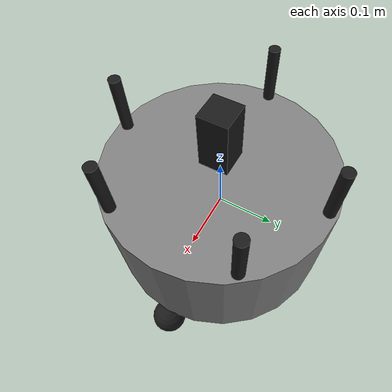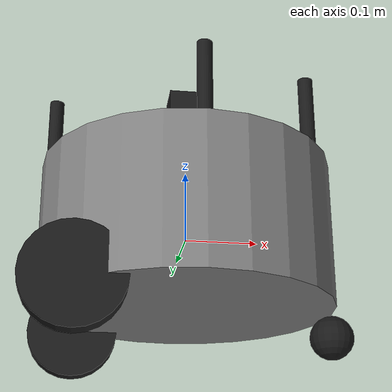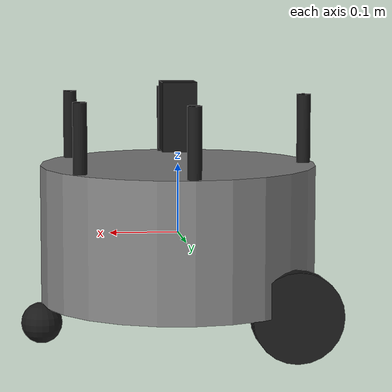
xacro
<?xml version="1.0"?>
<robot name="agv" xmlns:xacro="http://ros.org/wiki/xacro">

  <!-- =====================
       パラメータ
       ===================== -->
  <xacro:property name="body_radius"    value="0.2"/>
  <xacro:property name="body_height"    value="0.2"/>
  <xacro:property name="mass"           value="10.0"/>

  <xacro:property name="wheel_radius"      value="0.065"/>
  <xacro:property name="wheel_width"       value="0.03"/>
  <xacro:property name="wheel_separation"  value="0.3"/>
  <xacro:property name="use_gazebo" value="false"/>
  <!-- =====================
       マテリアル
       ===================== -->
  <material name="gray">
    <color rgba="0.5 0.5 0.5 1.0"/>
  </material>
  <material name="black">
    <color rgba="0.1 0.1 0.1 1.0"/>
  </material>

  <!-- =====================
       本体
       ===================== -->
  <link name="base_link">
    <visual>
      <geometry>
        <cylinder radius="${body_radius}" length="${body_height}"/>
      </geometry>
      <material name="gray"/>
    </visual>
    <collision>
      <geometry>
        <cylinder radius="${body_radius}" length="${body_height}"/>
      </geometry>
    </collision>
    <inertial>
      <mass value="${mass}"/>
      <origin xyz="0 0 0" rpy="0 0 0"/>
      <inertia ixx="0.1" ixy="0" ixz="0" iyy="0.1" iyz="0" izz="0.1"/>
    </inertial>
  </link>

<xacro:if value="${use_gazebo}">
  <gazebo reference="base_link">
    <material>Gazebo/Blue</material>
  </gazebo>
</xacro:if>

  <!-- =====================
       支柱リンク（共通）
       ===================== -->
  <xacro:macro name="pillar_link_macro" params="name">
    <link name="${name}">
      <visual>
        <geometry>
          <cylinder radius="0.01" length="0.2"/>
        </geometry>
        <origin xyz="0 0 0" rpy="0 0 0"/>
        <material name="black"/>
      </visual>
      <collision>
        <geometry>
          <cylinder radius="0.01" length="0.2"/>
        </geometry>
        <origin xyz="0 0 0" rpy="0 0 0"/>
      </collision>
      <inertial>
        <mass value="0.2"/>
        <origin xyz="0 0 0" rpy="0 0 0"/>
        <inertia ixx="0.001" ixy="0" ixz="0" iyy="0.001" iyz="0" izz="0.001"/>
      </inertial>
    </link>
  </xacro:macro>

  <!-- =====================
       支柱配置（5本）
       ===================== -->

  <xacro:pillar_link_macro name="pillar_link_north1"/>
  <joint name="pillar_joint_north" type="fixed">
    <parent link="base_link"/>
    <child link="pillar_link_north1"/>
    <origin xyz="0.1497 0.1087 ${body_height/2}" rpy="0 0 0"/>
  </joint>

  <xacro:pillar_link_macro name="pillar_link_north2"/>
  <joint name="pillar_joint_north2" type="fixed">
    <parent link="base_link"/>
    <child link="pillar_link_north2"/>
    <origin xyz="0.1497 -0.1087 ${body_height/2}" rpy="0 0 0"/>
  </joint>

  <xacro:pillar_link_macro name="pillar_link_south"/>
  <joint name="pillar_joint_south" type="fixed">
    <parent link="base_link"/>
    <child link="pillar_link_south"/>
    <origin xyz="0 -0.185 ${body_height/2}" rpy="0 0 0"/>
  </joint>

  <xacro:pillar_link_macro name="pillar_link_east"/>
  <joint name="pillar_joint_east" type="fixed">
    <parent link="base_link"/>
    <child link="pillar_link_east"/>
    <origin xyz="0 0.185 ${body_height/2}" rpy="0 0 0"/>
  </joint>

  <xacro:pillar_link_macro name="pillar_link_west"/>
  <joint name="pillar_joint_west" type="fixed">
    <parent link="base_link"/>
    <child link="pillar_link_west"/>
    <origin xyz="-0.185 0 ${body_height/2}" rpy="0 0 0"/>
  </joint>

  <!-- =====================
       左右車輪
       ===================== -->
  <link name="left_wheel_link">
    <visual>
      <geometry>
        <cylinder radius="${wheel_radius}" length="${wheel_width}"/>
      </geometry>

      <material name="black"/>
    </visual>
    <collision>
      <geometry>
        <cylinder radius="${wheel_radius}" length="${wheel_width}"/>
      </geometry>
    </collision>
    <inertial>
      <mass value="1.0"/>
      <origin xyz="0 0 0" rpy="0 1.5708 1.5708"/>
      <inertia ixx="0.01" ixy="0" ixz="0" iyy="0.01" iyz="0" izz="0.01"/>
    </inertial>
  </link>

<xacro:if value="${use_gazebo}">
  <gazebo reference="left_wheel_link">
    <material>Gazebo/Black</material>
  </gazebo>
</xacro:if>

  <link name="right_wheel_link">
    <visual>
      <geometry>
        <cylinder radius="${wheel_radius}" length="${wheel_width}"/>
      </geometry>
      <material name="black"/>
    </visual>
    <collision>
      <geometry>
        <cylinder radius="${wheel_radius}" length="${wheel_width}"/>
      </geometry>
    </collision>
    <inertial>
      <mass value="1.0"/>
      <origin xyz="0 0 0" rpy="0 1.5708 1.5708"/>
      <inertia ixx="0.01" ixy="0" ixz="0" iyy="0.01" iyz="0" izz="0.01"/>
    </inertial>
  </link>

<xacro:if value="${use_gazebo}">
  <gazebo reference="right_wheel_link">
    <material>Gazebo/Black</material>
  </gazebo>
</xacro:if>
  <!-- =====================
       ジョイント
       ===================== -->
  <joint name="left_wheel_joint" type="continuous">
    <parent link="base_link"/>
    <child  link="left_wheel_link"/>
    <origin xyz="-0.15 ${wheel_separation/2} ${-body_height/2}" rpy="0 1.5708 1.5708"/>
    <axis  xyz="0 0 1"/>
    <limit effort="1.0" velocity="10.0"/>
  </joint>

  <joint name="right_wheel_joint" type="continuous">
    <parent link="base_link"/>
    <child  link="right_wheel_link"/>
    <origin xyz="-0.15 ${-wheel_separation/2} ${-body_height/2}" rpy="0 1.5708 1.5708"/>
    <axis  xyz="0 0 1"/>
    <limit effort="1.0" velocity="10.0"/>
  </joint>

  <!-- =====================
       レーザー (LiDAR)
       ===================== -->
  <link name="laser_link">
    <visual>
      <geometry>
        <box size="0.05 0.05 0.1"/>
      </geometry>
      <origin xyz="0 0 0.05" rpy="0 0 0"/>
      <material name="black"/>
    </visual>
  </link>

<xacro:if value="${use_gazebo}">
  <gazebo reference="laser_link">
    <material>Gazebo/Black</material>
  </gazebo>
</xacro:if>

  <joint name="laser_joint" type="fixed">
    <parent link="base_link"/>
    <child link="laser_link"/>
    <origin xyz="0 0 ${body_height/2+0.02}" rpy="0 0 3.1415926535"/>
  </joint>

  <!-- =====================
       Gazebo プラグイン
       ===================== -->

<xacro:if value="${use_gazebo}">
 <gazebo>
    <plugin name="gazebo_ros_diff_drive" filename="libgazebo_ros_diff_drive.so">
      <left_joint>left_wheel_joint</left_joint>
      <right_joint>right_wheel_joint</right_joint>
      <wheel_separation>${wheel_separation}</wheel_separation>
      <wheel_diameter>${wheel_radius * 2.0}</wheel_diameter>
      <cmd_vel_timeout>0.5</cmd_vel_timeout>
      <topicName>/cmd_vel</topicName>
      <robotNamespace>agv</robotNamespace>
    </plugin>
  </gazebo>
</xacro:if>
  <!-- レーザーセンサ -->
<xacro:if value="${use_gazebo}">
  <gazebo reference="laser_link">
    <sensor name="laser_sensor" type="ray">
      <pose>0 0 0 0 0 0</pose>
      <update_rate>20</update_rate>
      <ray>
        <scan>
          <horizontal>
            <samples>360</samples>
            <resolution>1</resolution>
            <min_angle>-3.14159</min_angle>
            <max_angle>3.14159</max_angle>
          </horizontal>
        </scan>
        <range>
          <min>0.05</min>
          <max>10.0</max>
          <resolution>0.01</resolution>
        </range>
        <noise>
          <type>gaussian</type>
          <mean>0.0</mean>
          <stddev>0.01</stddev>
        </noise>
      </ray>
      <plugin name="gazebo_ros_ray_sensor" filename="libgazebo_ros_ray_sensor.so">
        <topicName>/scan</topicName>
          <ros>
            <topic>/scan</topic>
          </ros>
        <output_type>sensor_msgs/LaserScan</output_type>
        <frame_name>laser_link</frame_name>
      </plugin>
    </sensor>
  </gazebo>
</xacro:if>
  <!-- =====================
       キャスター（補助輪）
       ===================== -->
  <link name="caster_link">
    <visual>
      <geometry>
        <sphere radius="0.03"/>
      </geometry>
      <material name="black"/>
    </visual>
    <collision>
      <geometry>
        <sphere radius="0.03"/>
      </geometry>
    </collision>
    <inertial>
      <mass value="0.1"/>
      <origin xyz="0 0 0" rpy="0 0 0"/>
      <inertia ixx="0.0001" ixy="0" ixz="0" iyy="0.0001" iyz="0" izz="0.0001"/>
    </inertial>
  </link>

<xacro:if value="${use_gazebo}">
  <gazebo reference="caster_link">
    <material>Gazebo/Black</material>
  </gazebo>
</xacro:if>

  <joint name="caster_joint" type="continuous">
    <parent link="base_link"/>
    <child link="caster_link"/>
    <origin xyz="0.2 0 ${-body_height/2 - 0.03}" rpy="0 0 0"/>
    <axis xyz="0 0 1"/>
  </joint>

</robot>
